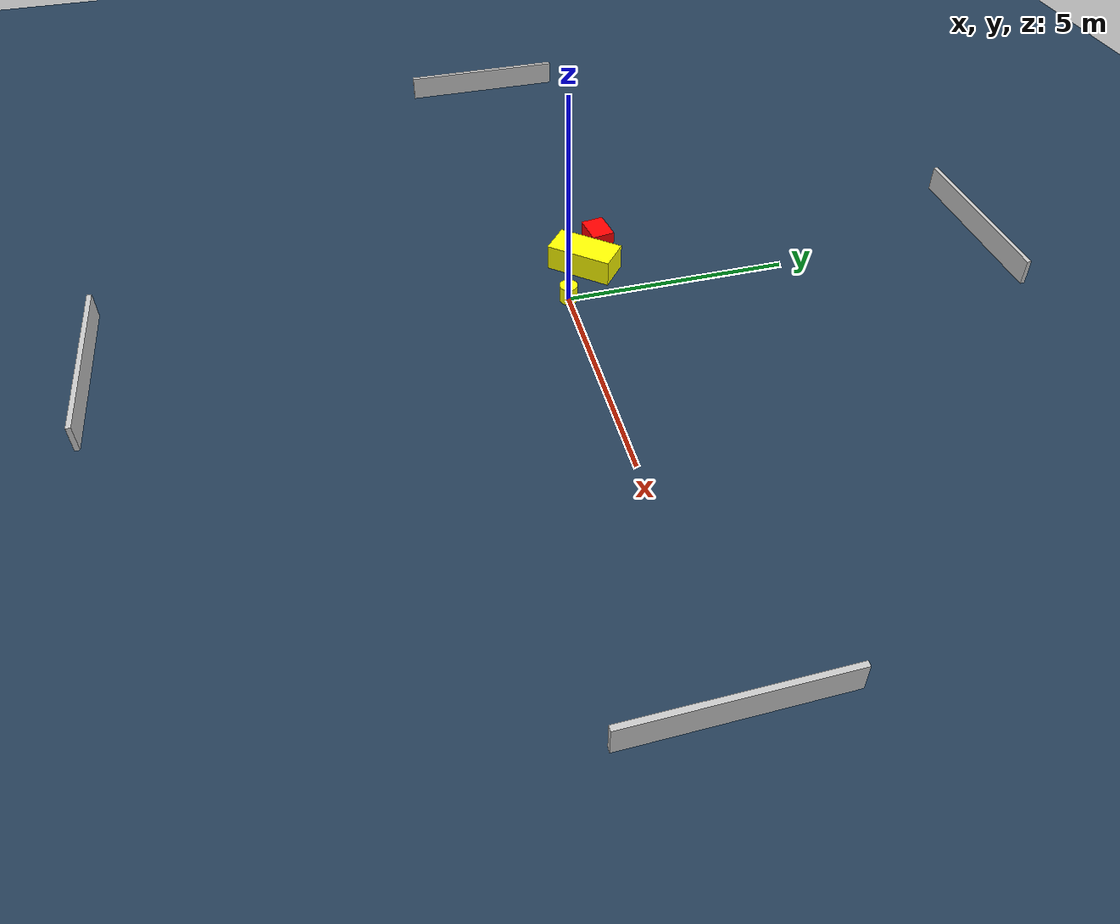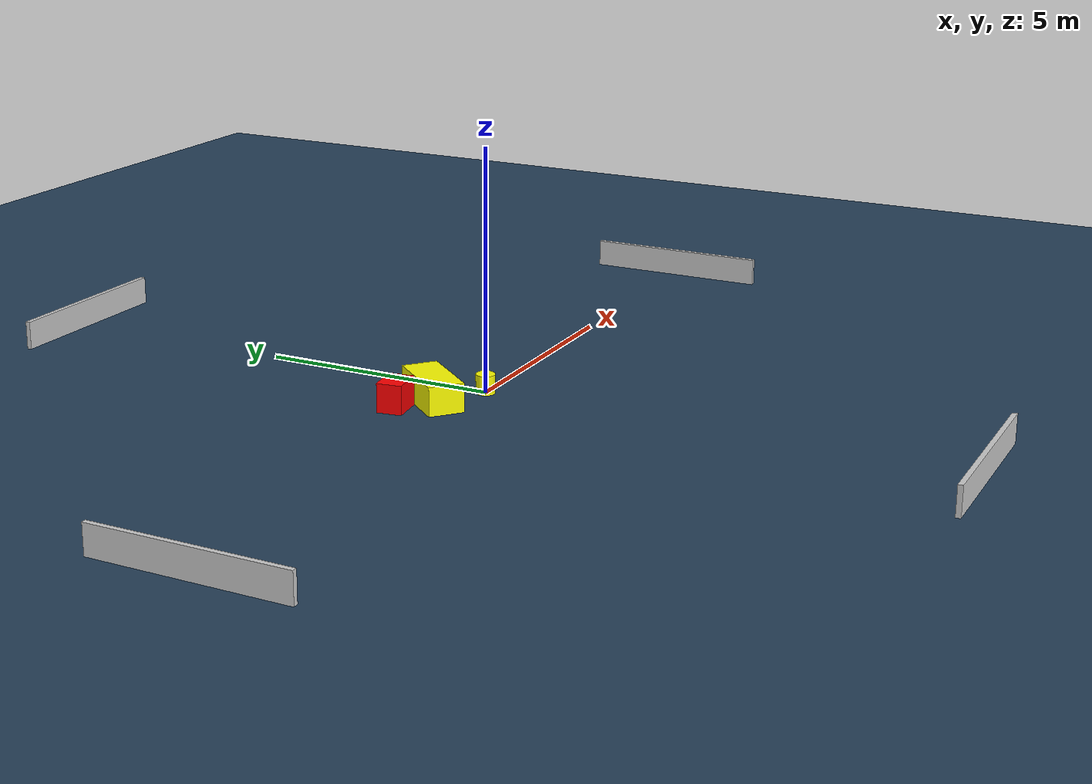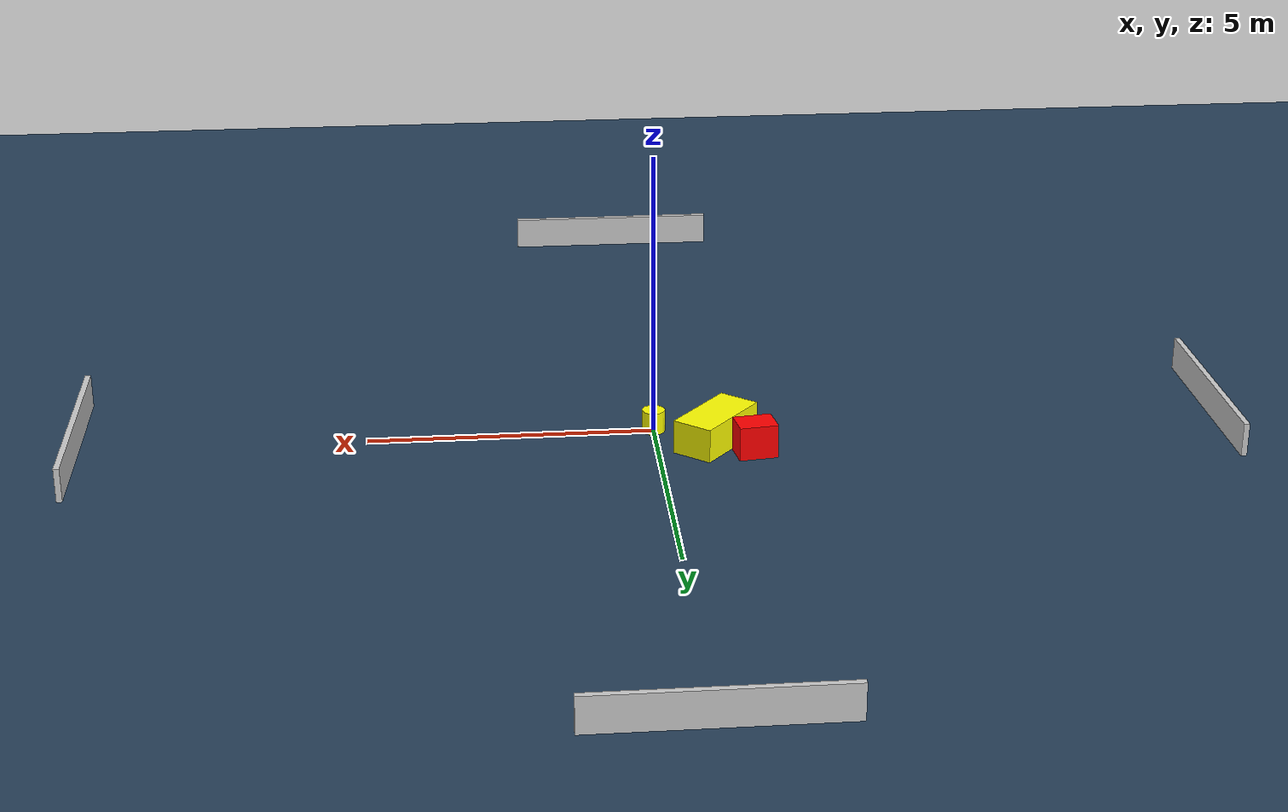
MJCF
<?xml version="1.0" ?>
<mujoco model="generated_environment">
  <option timestep="0.01" integrator="RK4" cone="elliptic"/>
  <default>
    <geom density="1"/>
  </default>
  <asset>
    <texture builtin="gradient" height="3072" name="skybox" rgb1="0.3 0.5 0.7" rgb2="0 0 0" type="skybox" width="512"/>
    <texture builtin="checker" height="300" name="groundplane" rgb1="0.2 0.3 0.4" rgb2="0.1 0.2 0.3" type="2d" width="300"/>
    <material name="groundplane" reflectance="0.2" texrepeat="5 5" texture="groundplane"/>
  </asset>
  <worldbody>
    <light dir="0 0 -1" directional="true" pos="0 0 1.5"/>
    <geom condim="3" friction="0.5 0.005 0.001" material="groundplane" name="floor" pos="0 0 0" size="0 0 0.05" type="plane"/>
    <body name="walls">
      <geom name="wall_1" condim="4" pos="-10.0 0.0 0.3" rgba="0.800000011920929 0.800000011920929 0.800000011920929 1.0" size="0.05 2.0 0.3" type="box"/>
      <geom name="wall_2" condim="4" pos="10.0 0.0 0.3" rgba="0.800000011920929 0.800000011920929 0.800000011920929 1.0" size="0.05 2.0 0.3" type="box"/>
      <geom name="wall_3" condim="4" pos="0.0 -10.0 0.3" rgba="0.800000011920929 0.800000011920929 0.800000011920929 1.0" size="2.0 0.05 0.3" type="box"/>
      <geom name="wall_4" condim="4" pos="0.0 10.0 0.3" rgba="0.800000011920929 0.800000011920929 0.800000011920929 1.0" size="2.0 0.05 0.3" type="box"/>
    </body>
    <body name="robot">
      <joint name="joint_x" type="slide" pos="0 0 0" axis="1 0 0"/>
      <joint name="joint_y" type="slide" pos="0 0 0" axis="0 1 0"/>
      <geom name="robot" type="cylinder" pos="0.0 0.0 0.2" size="0.2 0.2 0.0" mass="5.0" friction="1.0 0.005 0.0001" condim="4" rgba="1.0 1.0 0.0 1.0"/>
    </body>
    <body name="obstacle_1_movable">
      <geom name="obstacle_1_movable" condim="4" pos="-1.0249641988344609 0.6353423902680909 0.3" euler="0 0 140.07067855474375" friction="0.0 0.005 0.001" rgba="1.0 1.0 0.0 1.0" size="0.36985882661644054 0.7449916676956725 0.3" type="box" mass="0.1"/>
      <joint type="free"/>
    </body>
    <body name="obstacle_2_static">
      <geom name="obstacle_2_static" condim="4" pos="-1.6527378147352252 1.11971613506636 0.3" euler="0 0 7.864485676602135" friction="0.0 0.005 0.001" rgba="1.0 0.0 0.0 1.0" size="0.33933047249079856 0.25931905436653796 0.3" type="box"/>
    </body>
  </worldbody>
  <actuator>
    <motor name="actuator_x" joint="joint_x" gear="1" ctrlrange="-1 1"/>
    <motor name="actuator_y" joint="joint_y" gear="1" ctrlrange="-1 1"/>
  </actuator>
</mujoco>
